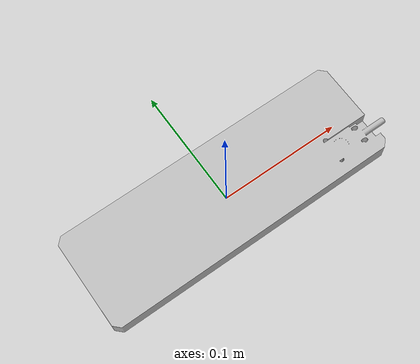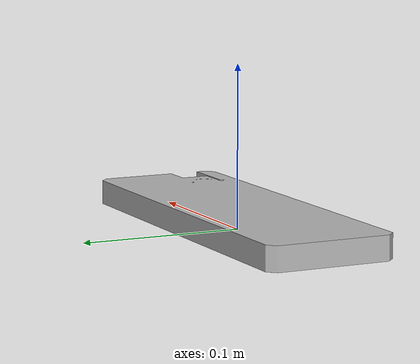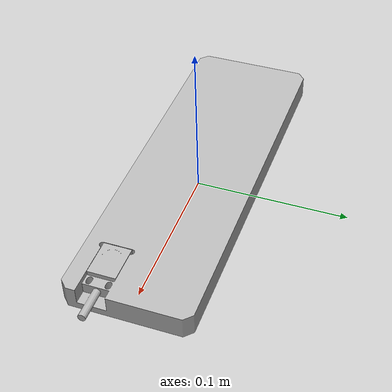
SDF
<?xml version='1.0'?>
<sdf version='1.6'>
  <model name='metal_base_vtwo'>
    <link name='metal_scara_base_link'>
      <pose frame=''>0 0 0 0 -0 0</pose>
      <inertial>
        <pose frame=''>-0.001271 0.000176 0.00743 0 -0 0</pose>
        <mass>0.28308</mass>
        <inertia>
          <ixx>0.0001542</ixx>
          <ixy>-1.6027e-05</ixy>
          <ixz>2.4717e-06</ixz>
          <iyy>0.0012908</iyy>
          <iyz>-3.5832e-07</iyz>
          <izz>0.0014346</izz>
        </inertia>
      </inertial>
      <self_collide>0</self_collide>
      <enable_wind>0</enable_wind>
      <kinematic>0</kinematic>
      <visual name='metal_scara_base_link_visual'>
        <pose frame=''>0 0 0 0 -0 0</pose>
        <geometry>
          <mesh>
            <scale>1 1 1</scale>
            <uri>model://metal_base_vtwo/meshes/metal_scara_base_link.STL</uri>
          </mesh>
        </geometry>
        <transparency>0</transparency>
        <cast_shadows>1</cast_shadows>
      </visual>
      <collision name='metal_scara_base_link_collision'>
        <laser_retro>0</laser_retro>
        <max_contacts>10</max_contacts>
        <pose frame=''>0 0 0 0 -0 0</pose>
        <geometry>
          <mesh>
            <uri>model://metal_base_vtwo/meshes/metal_scara_base_link.STL</uri>
            <scale>1 1 1</scale>
          </mesh>
        </geometry>
        <surface>
          <friction>
            <ode>
              <mu>1</mu>
              <mu2>1</mu2>
              <fdir1>0 0 0</fdir1>
              <slip1>0</slip1>
              <slip2>0</slip2>
            </ode>
            <torsional>
              <coefficient>1</coefficient>
              <patch_radius>0</patch_radius>
              <surface_radius>0</surface_radius>
              <use_patch_radius>1</use_patch_radius>
              <ode>
                <slip>0</slip>
              </ode>
            </torsional>
          </friction>
          <bounce>
            <restitution_coefficient>0</restitution_coefficient>
            <threshold>1e+06</threshold>
          </bounce>
          <contact>
            <collide_without_contact>0</collide_without_contact>
            <collide_without_contact_bitmask>1</collide_without_contact_bitmask>
            <collide_bitmask>1</collide_bitmask>
            <ode>
              <soft_cfm>0</soft_cfm>
              <soft_erp>0.2</soft_erp>
              <kp>1e+13</kp>
              <kd>1</kd>
              <max_vel>0.01</max_vel>
              <min_depth>0.001</min_depth>
            </ode>
            <bullet>
              <split_impulse>1</split_impulse>
              <split_impulse_penetration_threshold>-0.01</split_impulse_penetration_threshold>
              <soft_cfm>0</soft_cfm>
              <soft_erp>0.2</soft_erp>
              <kp>1e+13</kp>
              <kd>1</kd>
            </bullet>
          </contact>
        </surface>
      </collision>
    </link>
    <static>0</static>
    <allow_auto_disable>1</allow_auto_disable>
  </model>
</sdf>
